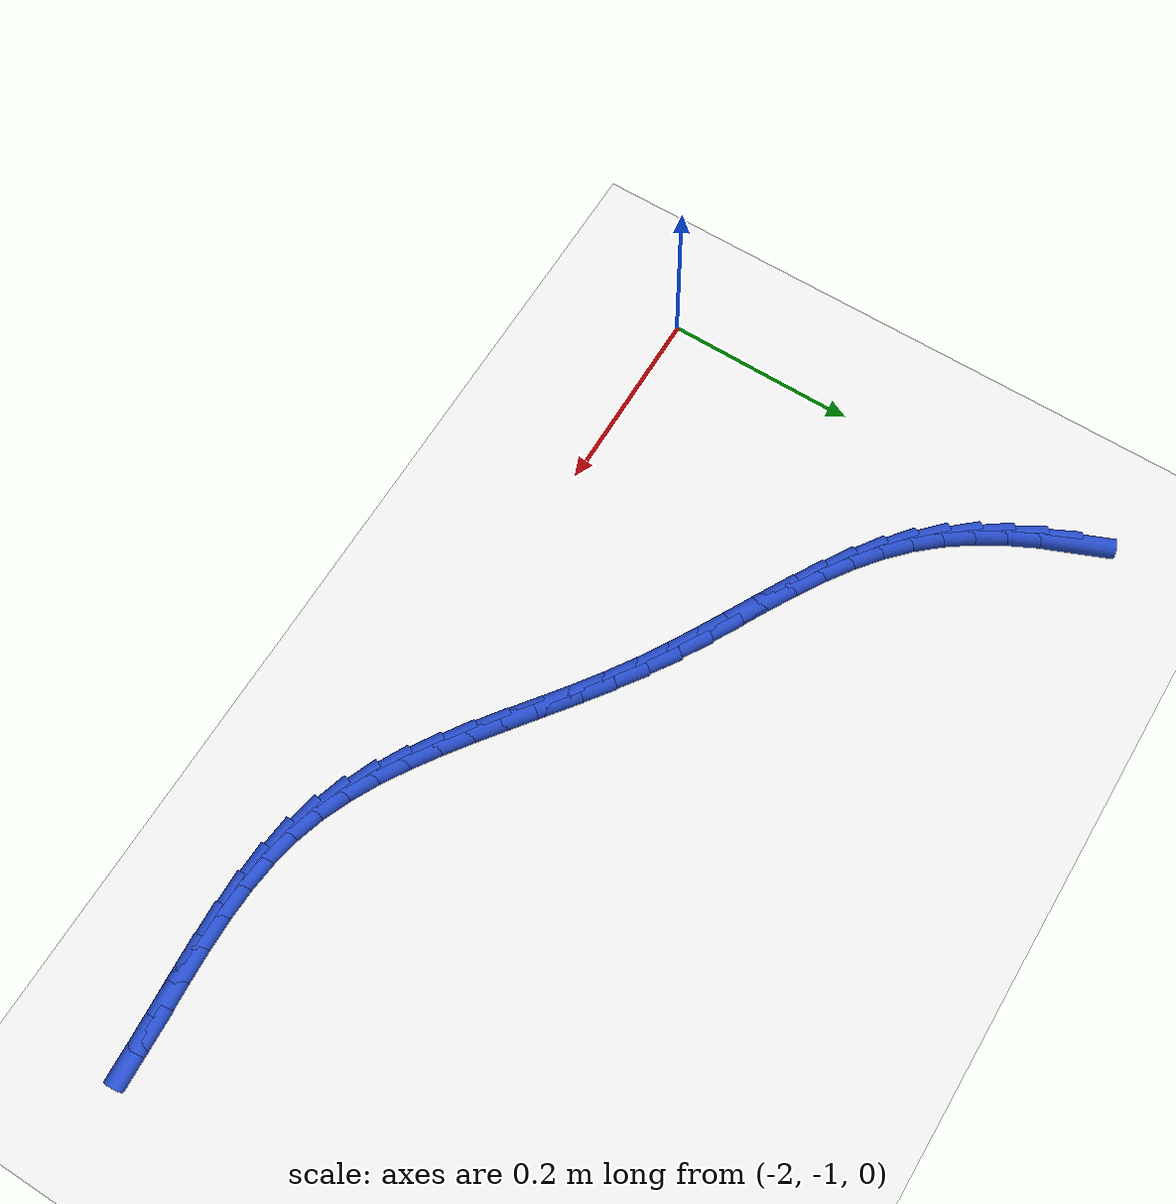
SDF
<sdf version="1.6">
 <world name="default">
  <model name="ground_plane">
   <static>1</static>
   <link name="link">
    <collision name="collision">
     <geometry><plane><normal>0 0 1</normal><size>100 100</size></plane></geometry>
     <surface><friction><ode><mu>100</mu><mu2>50</mu2></ode></friction></surface>
    </collision>
    <visual name="visual">
     <cast_shadows>0</cast_shadows>
     <geometry><plane><normal>0 0 1</normal><size>100 100</size></plane></geometry>
     <material>
      <script><uri>file://media/materials/scripts/gazebo.material</uri><name>Gazebo/WhiteGlow</name></script>
     </material>
    </visual>
   </link>
  </model>
  <model name="line">
   <link name="link_116">
    <pose>-1.9906520648166366 -0.5382554056412533 0.01 0 1.57 -1.1795151787642717</pose>
    <collision name="collision">
     <geometry><cylinder><radius>0.01</radius><length>0.08</length></cylinder></geometry>
    </collision>
    <visual name="visual">
     <material>
      <script><name>Gazebo/Blue</name><uri>file://media/materials/scripts/gazebo.material</uri></script>
     </material>
     <geometry><cylinder><radius>0.01</radius><length>0.08</length></cylinder></geometry>
    </visual>
   </link>
   <link name="link_117">
    <pose>-1.9779066476927099 -0.5691493928921548 0.01 0 1.57 -1.1119979987888782</pose>
    <collision name="collision">
     <geometry><cylinder><radius>0.01</radius><length>0.08</length></cylinder></geometry>
    </collision>
    <visual name="visual">
     <material>
      <script><name>Gazebo/Blue</name><uri>file://media/materials/scripts/gazebo.material</uri></script>
     </material>
     <geometry><cylinder><radius>0.01</radius><length>0.08</length></cylinder></geometry>
    </visual>
   </link>
   <link name="link_118">
    <pose>-1.963337857859881 -0.5986436756390493 0.01 0 1.57 -1.035641852800081</pose>
    <collision name="collision">
     <geometry><cylinder><radius>0.01</radius><length>0.08</length></cylinder></geometry>
    </collision>
    <visual name="visual">
     <material>
      <script><name>Gazebo/Blue</name><uri>file://media/materials/scripts/gazebo.material</uri></script>
     </material>
     <geometry><cylinder><radius>0.01</radius><length>0.08</length></cylinder></geometry>
    </visual>
   </link>
   <link name="link_119">
    <pose>-1.9468224507131826 -0.6265007584533377 0.01 0 1.57 -0.9498738273198081</pose>
    <collision name="collision">
     <geometry><cylinder><radius>0.01</radius><length>0.08</length></cylinder></geometry>
    </collision>
    <visual name="visual">
     <material>
      <script><name>Gazebo/Blue</name><uri>file://media/materials/scripts/gazebo.material</uri></script>
     </material>
     <geometry><cylinder><radius>0.01</radius><length>0.08</length></cylinder></geometry>
    </visual>
   </link>
   <link name="link_120">
    <pose>-1.9282371816476465 -0.652483145906421 0.01 0 1.57 -0.8545357201935871</pose>
    <collision name="collision">
     <geometry><cylinder><radius>0.01</radius><length>0.08</length></cylinder></geometry>
    </collision>
    <visual name="visual">
     <material>
      <script><name>Gazebo/Blue</name><uri>file://media/materials/scripts/gazebo.material</uri></script>
     </material>
     <geometry><cylinder><radius>0.01</radius><length>0.08</length></cylinder></geometry>
    </visual>
   </link>
   <link name="link_121">
    <pose>-1.9074588060583053 -0.6763533425696998 0.01 0 1.57 -0.7538205085952595</pose>
    <collision name="collision">
     <geometry><cylinder><radius>0.01</radius><length>0.08</length></cylinder></geometry>
    </collision>
    <visual name="visual">
     <material>
      <script><name>Gazebo/Blue</name><uri>file://media/materials/scripts/gazebo.material</uri></script>
     </material>
     <geometry><cylinder><radius>0.01</radius><length>0.08</length></cylinder></geometry>
    </visual>
   </link>
   <link name="link_122">
    <pose>-1.8844319707083805 -0.6979699732027416 0.01 0 1.57 -0.6660555901395168</pose>
    <collision name="collision">
     <geometry><cylinder><radius>0.01</radius><length>0.08</length></cylinder></geometry>
    </collision>
    <visual name="visual">
     <material>
      <script><name>Gazebo/Blue</name><uri>file://media/materials/scripts/gazebo.material</uri></script>
     </material>
     <geometry><cylinder><radius>0.01</radius><length>0.08</length></cylinder></geometry>
    </visual>
   </link>
   <link name="link_123">
    <pose>-1.8594122262469701 -0.7176318384049777 0.01 0 1.57 -0.5971120452871539</pose>
    <collision name="collision">
     <geometry><cylinder><radius>0.01</radius><length>0.08</length></cylinder></geometry>
    </collision>
    <visual name="visual">
     <material>
      <script><name>Gazebo/Blue</name><uri>file://media/materials/scripts/gazebo.material</uri></script>
     </material>
     <geometry><cylinder><radius>0.01</radius><length>0.08</length></cylinder></geometry>
    </visual>
   </link>
   <link name="link_124">
    <pose>-1.8327440680690077 -0.7357636662086513 0.01 0 1.57 -0.5467901845480903</pose>
    <collision name="collision">
     <geometry><cylinder><radius>0.01</radius><length>0.08</length></cylinder></geometry>
    </collision>
    <visual name="visual">
     <material>
      <script><name>Gazebo/Blue</name><uri>file://media/materials/scripts/gazebo.material</uri></script>
     </material>
     <geometry><cylinder><radius>0.01</radius><length>0.08</length></cylinder></geometry>
    </visual>
   </link>
   <link name="link_125">
    <pose>-1.8047719986925959 -0.7527901947309438 0.01 0 1.57 -0.514278216161503</pose>
    <collision name="collision">
     <geometry><cylinder><radius>0.01</radius><length>0.08</length></cylinder></geometry>
    </collision>
    <visual name="visual">
     <material>
      <script><name>Gazebo/Blue</name><uri>file://media/materials/scripts/gazebo.material</uri></script>
     </material>
     <geometry><cylinder><radius>0.01</radius><length>0.08</length></cylinder></geometry>
    </visual>
   </link>
   <link name="link_126">
    <pose>-1.775840520635837 -0.769136162089037 0.01 0 1.57 -0.4986665719823962</pose>
    <collision name="collision">
     <geometry><cylinder><radius>0.01</radius><length>0.08</length></cylinder></geometry>
    </collision>
    <visual name="visual">
     <material>
      <script><name>Gazebo/Blue</name><uri>file://media/materials/scripts/gazebo.material</uri></script>
     </material>
     <geometry><cylinder><radius>0.01</radius><length>0.08</length></cylinder></geometry>
    </visual>
   </link>
   <link name="link_127">
    <pose>-1.7462941364168323 -0.785226306400112 0.01 0 1.57 -0.49922669982012613</pose>
    <collision name="collision">
     <geometry><cylinder><radius>0.01</radius><length>0.08</length></cylinder></geometry>
    </collision>
    <visual name="visual">
     <material>
      <script><name>Gazebo/Blue</name><uri>file://media/materials/scripts/gazebo.material</uri></script>
     </material>
     <geometry><cylinder><radius>0.01</radius><length>0.08</length></cylinder></geometry>
    </visual>
   </link>
   <link name="link_128">
    <pose>-1.7164773485536844 -0.8014853657813505 0.01 0 1.57 -0.5155113957929616</pose>
    <collision name="collision">
     <geometry><cylinder><radius>0.01</radius><length>0.08</length></cylinder></geometry>
    </collision>
    <visual name="visual">
     <material>
      <script><name>Gazebo/Blue</name><uri>file://media/materials/scripts/gazebo.material</uri></script>
     </material>
     <geometry><cylinder><radius>0.01</radius><length>0.08</length></cylinder></geometry>
    </visual>
   </link>
   <link name="link_129">
    <pose>-1.6867346595644956 -0.818338078349934 0.01 0 1.57 -0.5473275992932852</pose>
    <collision name="collision">
     <geometry><cylinder><radius>0.01</radius><length>0.08</length></cylinder></geometry>
    </collision>
    <visual name="visual">
     <material>
      <script><name>Gazebo/Blue</name><uri>file://media/materials/scripts/gazebo.material</uri></script>
     </material>
     <geometry><cylinder><radius>0.01</radius><length>0.08</length></cylinder></geometry>
    </visual>
   </link>
   <link name="link_130">
    <pose>-1.6574105719673426 -0.8362091822230006 0.01 0 1.57 -0.5897530067482725</pose>
    <collision name="collision">
     <geometry><cylinder><radius>0.01</radius><length>0.08</length></cylinder></geometry>
    </collision>
    <visual name="visual">
     <material>
      <script><name>Gazebo/Blue</name><uri>file://media/materials/scripts/gazebo.material</uri></script>
     </material>
     <geometry><cylinder><radius>0.01</radius><length>0.08</length></cylinder></geometry>
    </visual>
   </link>
   <link name="link_131">
    <pose>-1.6287663291260828 -0.8553778517659247 0.01 0 1.57 -0.623523406631524</pose>
    <collision name="collision">
     <geometry><cylinder><radius>0.01</radius><length>0.08</length></cylinder></geometry>
    </collision>
    <visual name="visual">
     <material>
      <script><name>Gazebo/Blue</name><uri>file://media/materials/scripts/gazebo.material</uri></script>
     </material>
     <geometry><cylinder><radius>0.01</radius><length>0.08</length></cylinder></geometry>
    </visual>
   </link>
   <link name="link_132">
    <pose>-1.6007308027427727 -0.8755421688921481 0.01 0 1.57 -0.6441369482847245</pose>
    <collision name="collision">
     <geometry><cylinder><radius>0.01</radius><length>0.08</length></cylinder></geometry>
    </collision>
    <visual name="visual">
     <material>
      <script><name>Gazebo/Blue</name><uri>file://media/materials/scripts/gazebo.material</uri></script>
     </material>
     <geometry><cylinder><radius>0.01</radius><length>0.08</length></cylinder></geometry>
    </visual>
   </link>
   <link name="link_133">
    <pose>-1.5731499375110052 -0.8962552324608449 0.01 0 1.57 -0.6517709695245415</pose>
    <collision name="collision">
     <geometry><cylinder><radius>0.01</radius><length>0.08</length></cylinder></geometry>
    </collision>
    <visual name="visual">
     <material>
      <script><name>Gazebo/Blue</name><uri>file://media/materials/scripts/gazebo.material</uri></script>
     </material>
     <geometry><cylinder><radius>0.01</radius><length>0.08</length></cylinder></geometry>
    </visual>
   </link>
   <link name="link_134">
    <pose>-1.5458696781243735 -0.9170701413311891 0.01 0 1.57 -0.6463154665108332</pose>
    <collision name="collision">
     <geometry><cylinder><radius>0.01</radius><length>0.08</length></cylinder></geometry>
    </collision>
    <visual name="visual">
     <material>
      <script><name>Gazebo/Blue</name><uri>file://media/materials/scripts/gazebo.material</uri></script>
     </material>
     <geometry><cylinder><radius>0.01</radius><length>0.08</length></cylinder></geometry>
    </visual>
   </link>
   <link name="link_135">
    <pose>-1.5187359692764684 -0.9375399943623542 0.01 0 1.57 -0.6273206580733769</pose>
    <collision name="collision">
     <geometry><cylinder><radius>0.01</radius><length>0.08</length></cylinder></geometry>
    </collision>
    <visual name="visual">
     <material>
      <script><name>Gazebo/Blue</name><uri>file://media/materials/scripts/gazebo.material</uri></script>
     </material>
     <geometry><cylinder><radius>0.01</radius><length>0.08</length></cylinder></geometry>
    </visual>
   </link>
   <link name="link_136">
    <pose>-1.4915947556608837 -0.9572178904135146 0.01 0 1.57 -0.5939928340706151</pose>
    <collision name="collision">
     <geometry><cylinder><radius>0.01</radius><length>0.08</length></cylinder></geometry>
    </collision>
    <visual name="visual">
     <material>
      <script><name>Gazebo/Blue</name><uri>file://media/materials/scripts/gazebo.material</uri></script>
     </material>
     <geometry><cylinder><radius>0.01</radius><length>0.08</length></cylinder></geometry>
    </visual>
   </link>
   <link name="link_137">
    <pose>-1.4642919819712121 -0.9756569283438438 0.01 0 1.57 -0.5452573574824743</pose>
    <collision name="collision">
     <geometry><cylinder><radius>0.01</radius><length>0.08</length></cylinder></geometry>
    </collision>
    <visual name="visual">
     <material>
      <script><name>Gazebo/Blue</name><uri>file://media/materials/scripts/gazebo.material</uri></script>
     </material>
     <geometry><cylinder><radius>0.01</radius><length>0.08</length></cylinder></geometry>
    </visual>
   </link>
   <link name="link_138">
    <pose>-1.4366735929010457 -0.9924102070125159 0.01 0 1.57 -0.4799347267670114</pose>
    <collision name="collision">
     <geometry><cylinder><radius>0.01</radius><length>0.08</length></cylinder></geometry>
    </collision>
    <visual name="visual">
     <material>
      <script><name>Gazebo/Blue</name><uri>file://media/materials/scripts/gazebo.material</uri></script>
     </material>
     <geometry><cylinder><radius>0.01</radius><length>0.08</length></cylinder></geometry>
    </visual>
   </link>
   <link name="link_139">
    <pose>-1.4085855331439763 -1.0070308252787046 0.01 0 1.57 -0.3970981187117312</pose>
    <collision name="collision">
     <geometry><cylinder><radius>0.01</radius><length>0.08</length></cylinder></geometry>
    </collision>
    <visual name="visual">
     <material>
      <script><name>Gazebo/Blue</name><uri>file://media/materials/scripts/gazebo.material</uri></script>
     </material>
     <geometry><cylinder><radius>0.01</radius><length>0.08</length></cylinder></geometry>
    </visual>
   </link>
   <link name="link_140">
    <pose>-1.379873747393598 -1.019071882001584 0.01 0 1.57 -0.2967251687616036</pose>
    <collision name="collision">
     <geometry><cylinder><radius>0.01</radius><length>0.08</length></cylinder></geometry>
    </collision>
    <visual name="visual">
     <material>
      <script><name>Gazebo/Blue</name><uri>file://media/materials/scripts/gazebo.material</uri></script>
     </material>
     <geometry><cylinder><radius>0.01</radius><length>0.08</length></cylinder></geometry>
    </visual>
   </link>
   <link name="link_141">
    <pose>-1.3503845997636688 -1.0280882381885452 0.01 0 1.57 -0.18998036822183254</pose>
    <collision name="collision">
     <geometry><cylinder><radius>0.01</radius><length>0.08</length></cylinder></geometry>
    </collision>
    <visual name="visual">
     <material>
      <script><name>Gazebo/Blue</name><uri>file://media/materials/scripts/gazebo.material</uri></script>
     </material>
     <geometry><cylinder><radius>0.01</radius><length>0.08</length></cylinder></geometry>
    </visual>
   </link>
   <link name="link_142">
    <pose>-1.3200334764027868 -1.0339247434202192 0.01 0 1.57 -0.09955285648898411</pose>
    <collision name="collision">
     <geometry><cylinder><radius>0.01</radius><length>0.08</length></cylinder></geometry>
    </collision>
    <visual name="visual">
     <material>
      <script><name>Gazebo/Blue</name><uri>file://media/materials/scripts/gazebo.material</uri></script>
     </material>
     <geometry><cylinder><radius>0.01</radius><length>0.08</length></cylinder></geometry>
    </visual>
   </link>
   <link name="link_143">
    <pose>-1.288880977887866 -1.03703634990575 0.01 0 1.57 -0.028816534680408432</pose>
    <collision name="collision">
     <geometry><cylinder><radius>0.01</radius><length>0.08</length></cylinder></geometry>
    </collision>
    <visual name="visual">
     <material>
      <script><name>Gazebo/Blue</name><uri>file://media/materials/scripts/gazebo.material</uri></script>
     </material>
     <geometry><cylinder><radius>0.01</radius><length>0.08</length></cylinder></geometry>
    </visual>
   </link>
   <link name="link_144">
    <pose>-1.2570060603933253 -1.0379551289010278 0.01 0 1.57 0.02281320622308584</pose>
    <collision name="collision">
     <geometry><cylinder><radius>0.01</radius><length>0.08</length></cylinder></geometry>
    </collision>
    <visual name="visual">
     <material>
      <script><name>Gazebo/Blue</name><uri>file://media/materials/scripts/gazebo.material</uri></script>
     </material>
     <geometry><cylinder><radius>0.01</radius><length>0.08</length></cylinder></geometry>
    </visual>
   </link>
   <link name="link_145">
    <pose>-1.2244876800935829 -1.0372131516619432 0.01 0 1.57 0.05648456089768191</pose>
    <collision name="collision">
     <geometry><cylinder><radius>0.01</radius><length>0.08</length></cylinder></geometry>
    </collision>
    <visual name="visual">
     <material>
      <script><name>Gazebo/Blue</name><uri>file://media/materials/scripts/gazebo.material</uri></script>
     </material>
     <geometry><cylinder><radius>0.01</radius><length>0.08</length></cylinder></geometry>
    </visual>
   </link>
   <link name="link_146">
    <pose>-1.1914047931630563 -1.0353424894443861 0.01 0 1.57 0.07336794755947493</pose>
    <collision name="collision">
     <geometry><cylinder><radius>0.01</radius><length>0.08</length></cylinder></geometry>
    </collision>
    <visual name="visual">
     <material>
      <script><name>Gazebo/Blue</name><uri>file://media/materials/scripts/gazebo.material</uri></script>
     </material>
     <geometry><cylinder><radius>0.01</radius><length>0.08</length></cylinder></geometry>
    </visual>
   </link>
   <link name="link_147">
    <pose>-1.1578363557761646 -1.0328752135042474 0.01 0 1.57 0.07438248765766231</pose>
    <collision name="collision">
     <geometry><cylinder><radius>0.01</radius><length>0.08</length></cylinder></geometry>
    </collision>
    <visual name="visual">
     <material>
      <script><name>Gazebo/Blue</name><uri>file://media/materials/scripts/gazebo.material</uri></script>
     </material>
     <geometry><cylinder><radius>0.01</radius><length>0.08</length></cylinder></geometry>
    </visual>
   </link>
   <link name="link_148">
    <pose>-1.1238613241073268 -1.0303433950974177 0.01 0 1.57 0.06010619895807044</pose>
    <collision name="collision">
     <geometry><cylinder><radius>0.01</radius><length>0.08</length></cylinder></geometry>
    </collision>
    <visual name="visual">
     <material>
      <script><name>Gazebo/Blue</name><uri>file://media/materials/scripts/gazebo.material</uri></script>
     </material>
     <geometry><cylinder><radius>0.01</radius><length>0.08</length></cylinder></geometry>
    </visual>
   </link>
  </model>
 </world>
</sdf>
